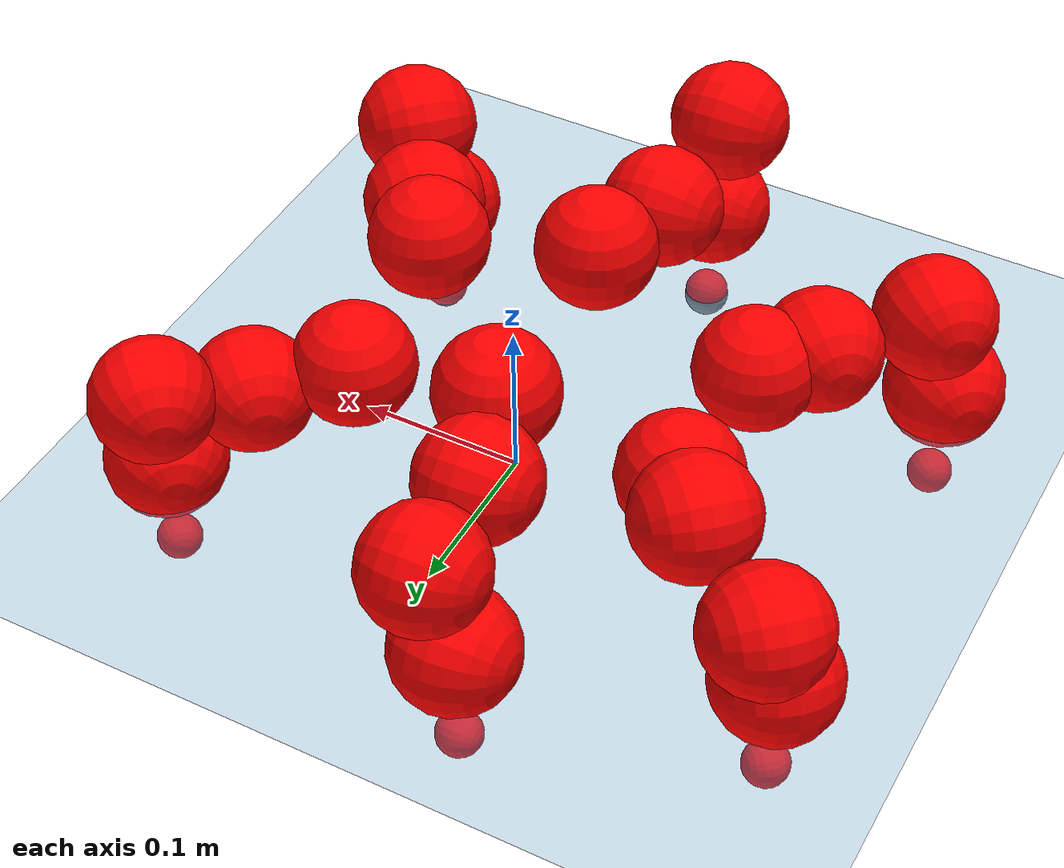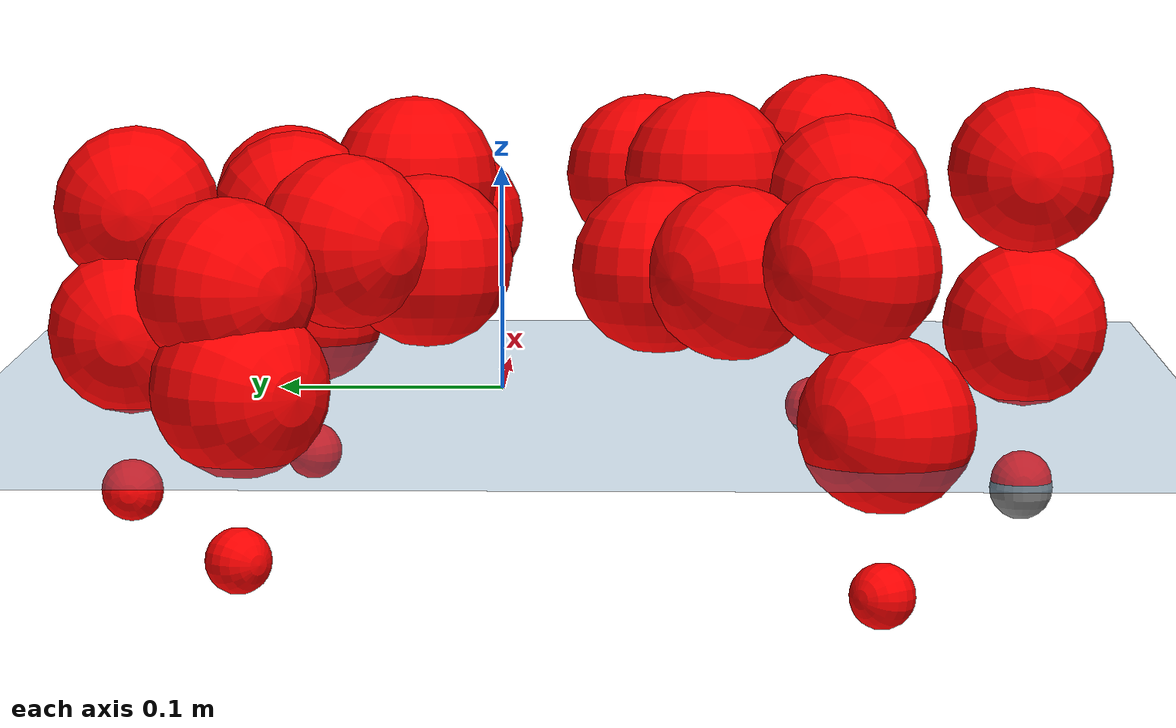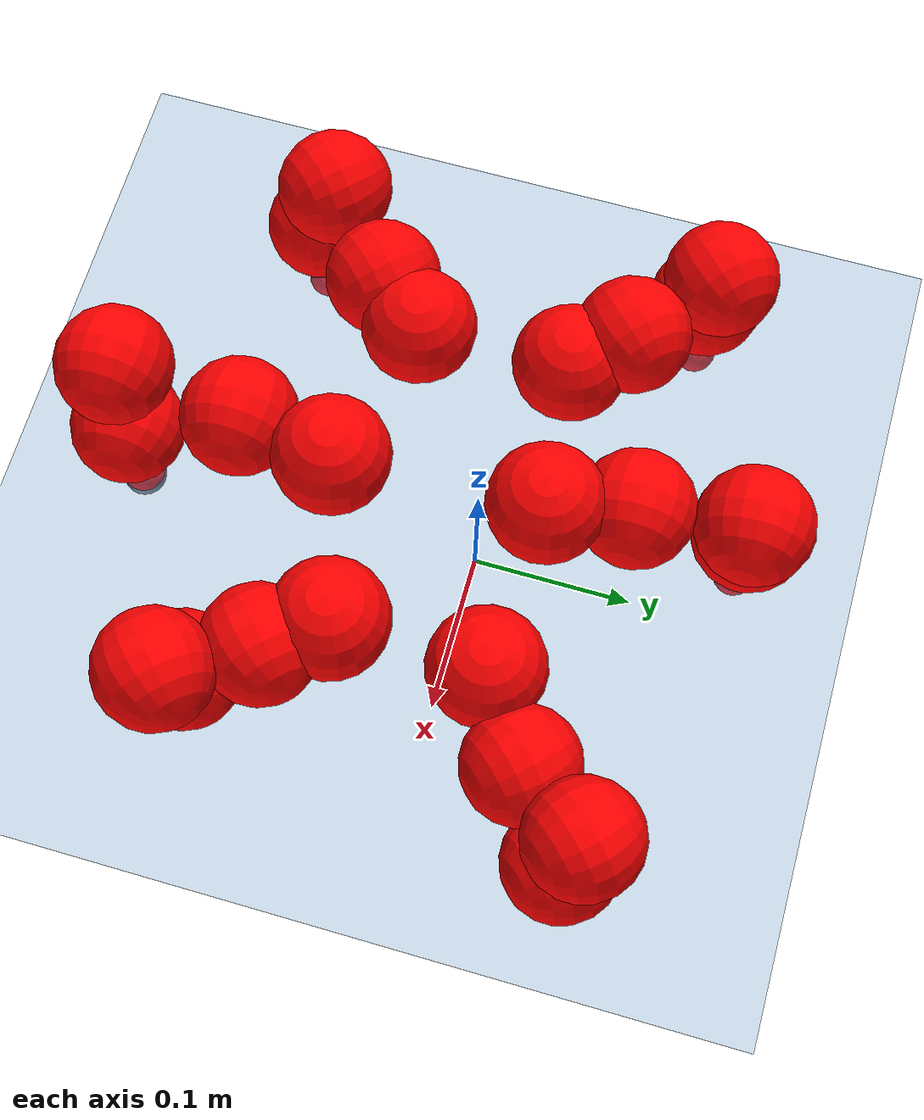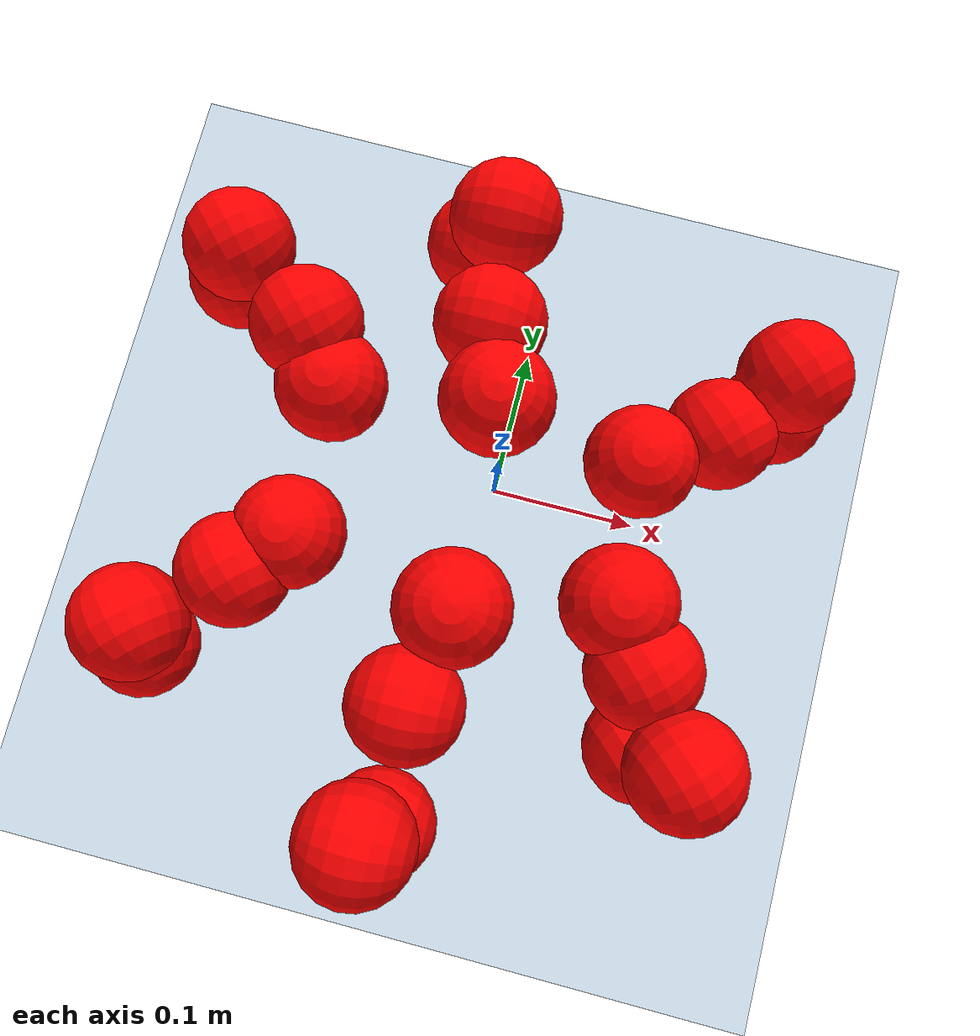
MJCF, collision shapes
<mujoco model="Golem">
  <compiler angle="radian" assetdir="assets" balanceinertia="true" inertiafromgeom="false"/>

  <option timestep="0.005" density="1.2" viscosity="2e-05"/>

  <size nkey="1"/>

  <visual>
    <quality shadowsize="8192"/>
    <map shadowclip="0.5"/>
  </visual>

  <default>
    <default class="/">
      <joint armature="0.01" damping="0.01" frictionloss="0.01"/>
      <geom contype="0" conaffinity="0" group="1" solref="-1000 -80"/>
      <site size="0.01 0.005 0.005" group="5"/>
      <general forcelimited="true" biastype="affine" gainprm="25" biasprm="0 -25 -0.5"/>
      <default class="visual">
        <geom type="mesh" group="2"/>
      </default>
      <default class="collision">
        <geom group="3"/>
      </default>
      <default class="foot">
        <geom size="0.01 0 0" condim="6" group="4" priority="1" solimp="0.015 1 0.01"/>
      </default>
      <default class="reward_collision_sphere">
        <geom group="5" rgba="1 0 0 1"/>
      </default>
    </default>
  </default>

  <asset>
    <texture type="skybox" colorspace="auto" name="//unnamed_texture_0" builtin="gradient" rgb1="0.95 0.95 0.95" rgb2="0.95 0.95 0.95" width="100" height="600"/>
    <texture type="2d" colorspace="auto" name="texplane" builtin="checker" rgb1="0.345 0.575 0.748" rgb2="0.345 0.575 0.748" markrgb="1 1 1" width="512" height="512"/>
    <material name="MatPlane" class="/" texture="texplane" texuniform="true" texrepeat="2 2" specular="0.9"/>
    <mesh name="body" class="/" file="body.stl" scale="0.001 0.001 0.001"/>
    <mesh name="coxa" class="/" file="coxa.stl" scale="0.001 0.001 0.001"/>
    <mesh name="femur" class="/" file="femur.stl" scale="0.001 0.001 0.001"/>
    <mesh name="tibia" class="/" file="tibia.stl" scale="0.001 0.001 0.001"/>
    <mesh name="tarsus" class="/" file="tarsus.stl" scale="0.001 0.001 0.001"/>
  </asset>

  <worldbody>
    <geom name="floor" class="/" size="100 100 0.125" type="plane" group="0" material="MatPlane"/>
    <light name="toplight_shadow" class="/" pos="0 0 5" dir="0.0990148 0.0990148 -0.990148" type="directional" ambient="0.04 0.04 0.04" diffuse="0.55 0.55 0.55" specular="0.12 0.12 0.12"/>
    <light name="toplight_fill" class="/" pos="0 0 5" dir="0.0990148 0.0990148 -0.990148" type="directional" castshadow="false" ambient="0.04 0.04 0.04" diffuse="0.3 0.3 0.3" specular="0.08 0.08 0.08"/>
    <body name="trunk" pos="-0.00974391 -0.0163849 -0.0122509" quat="0.999999 0.00083041 0.000825688 -0.00105938">
      <inertial pos="0.0106981 -0.00275981 0.0179793" quat="0.999712 -0.0212914 0.0106328 -0.00300597" mass="1.89872" diaginertia="0.00115695 0.000813536 0.0662868"/>
      <joint name="//unnamed_joint_0" type="free"/>
      <geom name="//unnamed_geom_1" class="/" pos="0 0 0.0936167" quat="1 0 0 0" type="mesh" rgba="0.9 0.9 0.9 1" mesh="body"/>
      <site name="imu" class="/" pos="0.113055 0.0644382 0.173099" size="0.00919642"/>
      <camera name="track" class="/" pos="0 -1.27517 0" quat="0.707107 0.707107 0 0" mode="trackcom"/>
      <camera name="ego_camera" class="/" pos="0.0856153 0 0.146276" quat="-0.5 -0.5 0.5 0.5"/>
      <body name="coxa_RR" pos="-0.121757 -0.06808 0.0806463" quat="0.376113 0.00311674 -0.00102565 -0.926568">
        <inertial pos="0.00320637 0.0177079 -0.0172405" quat="0.99838 0.0156676 -0.0260347 0.0480993" mass="0.131502" diaginertia="0.00132853 0.00122488 0.067127"/>
        <joint name="coxa_joint_RR" class="/" pos="0 0 0" axis="-0.0219233 0.000886775 -0.999759" range="-3.42338 3.12159" armature="0.00858147" damping="0.00360847" frictionloss="0.012002"/>
        <geom name="//unnamed_geom_2" class="/" type="mesh" rgba="0.2 0.2 0.2 1" mesh="coxa"/>
        <geom name="//unnamed_geom_3" class="reward_collision_sphere" size="0.0367857" pos="-0.0197574 0 0"/>
        <body name="femur_RR" pos="0.0215961 0.00391626 0.000708653" quat="0.493293 -0.502603 0.50095 0.503092">
          <inertial pos="0.0143077 0.00137509 0.00754557" quat="1 0.000163956 -2.84878e-05 -0.000212293" mass="0.147986" diaginertia="0.0011747 0.000984882 0.0629454"/>
          <joint name="femur_joint_RR" class="/" pos="0 0 0" axis="0.0184196 0.00430477 -0.999821" range="-2.87917 2.89933" armature="0.0160984" damping="0.00233755" frictionloss="0.00946193"/>
          <geom name="//unnamed_geom_4" class="/" type="mesh" rgba="0.9 0.9 0.9 1" mesh="femur"/>
          <geom name="//unnamed_geom_5" class="reward_collision_sphere" size="0.0367857"/>
          <body name="tibia_RR" pos="-0.00925789 -0.0687926 -0.00202214" quat="-7.3879e-05 1 -7.56984e-05 9.69591e-05">
            <inertial pos="-0.0112962 0.000947662 -0.00742889" quat="0.998279 -0.0175761 0.0046172 -0.0557534" mass="0.15717" diaginertia="0.00110287 0.000738895 0.044304"/>
            <joint name="tibia_joint_RR" class="/" pos="0 0 0" axis="-0.0686797 0.00576948 0.997622" stiffness="0.0522597" range="-2.92148 3.51805" armature="0.0126182" damping="0" frictionloss="0.0063118"/>
            <geom name="//unnamed_geom_6" class="/" type="mesh" rgba="0.2 0.2 0.2 1" mesh="tibia"/>
            <geom name="//unnamed_geom_7" class="reward_collision_sphere" size="0.0367857"/>
            <body name="tarsus_RR" pos="0.0631499 0.0163067 -0.00486832" quat="0.999996 -0.00200215 -0.00176386 -0.000277652">
              <inertial pos="0.024948 -0.0188725 0.0152736" quat="0.493555 0.538368 0.503501 0.461574" mass="0.132414" diaginertia="0.00112957 0.000676126 0.0522637"/>
              <joint name="tarsus_joint_RR" class="/" pos="0 0 0" axis="0.0577523 -0.00538003 0.998316" stiffness="0.0296501" range="-3.49017 3.09852" armature="0.00484208" damping="0.0620777" frictionloss="0.00396297"/>
              <geom name="//unnamed_geom_8" class="/" type="mesh" rgba="0.9 0.9 0.9 1" mesh="tarsus"/>
              <geom name="foot_1" class="foot" size="0.00572477" pos="0.0737609 0 0" quat="0 -0.707107 0 0.707107"/>
              <geom name="//unnamed_geom_10" class="reward_collision_sphere" size="0.0367857"/>
              <geom name="//unnamed_geom_11" class="reward_collision_sphere" size="0.0137946" pos="0.0707973 0 0"/>
              <site name="foot_1" class="foot" pos="0.0737609 0 0" quat="0 -0.707107 0 0.707107" size="0.00919642"/>
            </body>
          </body>
        </body>
      </body>
      <body name="coxa_RM" pos="0.00480607 -0.0952654 0.110213" quat="0.707047 -0.000319716 0.000212803 -0.707167">
        <inertial pos="0.00583618 -0.0107991 -0.00868726" quat="0.999839 0.00249074 0.0118721 -0.0132489" mass="0.162694" diaginertia="0.00112253 0.000993436 0.0596378"/>
        <joint name="coxa_joint_RM" class="/" pos="0 0 0" axis="-0.0232391 -0.0456546 -0.998687" stiffness="0.0844025" range="-2.99397 3.30535" armature="0.00968829" damping="0.0153559" frictionloss="0.0177021"/>
        <geom name="//unnamed_geom_12" class="/" type="mesh" rgba="0.2 0.2 0.2 1" mesh="coxa"/>
        <geom name="//unnamed_geom_13" class="reward_collision_sphere" size="0.0367857" pos="-0.0197574 0 0"/>
        <body name="femur_RM" pos="0.0425178 -0.0126501 -0.00871796" quat="0.498571 -0.499498 0.499127 0.502792">
          <inertial pos="-0.000376235 0.0117315 -0.014295" quat="0.999264 0.0133421 0.0188004 0.0306654" mass="0.175761" diaginertia="0.00159329 0.00125002 0.0731684"/>
          <joint name="femur_joint_RM" class="/" pos="0 0 0" axis="-0.0151498 0.0350303 -0.999271" range="-3.29607 3.36722" armature="0.0119452" damping="0.0745135" frictionloss="0.0109324"/>
          <geom name="//unnamed_geom_14" class="/" type="mesh" rgba="0.9 0.9 0.9 1" mesh="femur"/>
          <geom name="//unnamed_geom_15" class="reward_collision_sphere" size="0.0367857"/>
          <body name="tibia_RM" pos="-0.012634 -0.0806812 -0.00672805" quat="0.000424599 1 -2.78686e-05 6.00926e-05">
            <inertial pos="0.0177114 0.0167564 -0.0092136" quat="0.995987 0.0391346 0.0460339 0.0660289" mass="0.153031" diaginertia="0.00132022 0.00106338 0.0832152"/>
            <joint name="tibia_joint_RM" class="/" pos="0 0 0" axis="0.00382092 0.00164223 0.999991" stiffness="0.00399918" range="-3.22297 2.9206" armature="0.00343456" damping="0" frictionloss="0.0036427"/>
            <geom name="//unnamed_geom_16" class="/" type="mesh" rgba="0.2 0.2 0.2 1" mesh="tibia"/>
            <geom name="//unnamed_geom_17" class="reward_collision_sphere" size="0.0367857"/>
            <body name="tarsus_RM" pos="0.0697066 -0.000717655 -0.00791321" quat="0.999992 -0.00229923 0.00152539 -0.00278938">
              <inertial pos="0.0443601 -0.00459611 0.00689294" quat="0.50706 0.50331 0.477876 0.511082" mass="0.129734" diaginertia="0.000908766 0.000954834 0.0569318"/>
              <joint name="tarsus_joint_RM" class="/" pos="0 0 0" axis="0.00868359 -0.0376002 0.999255" stiffness="0.0523458" range="-3.14573 3.20998" armature="0.0175803" damping="0.0088151" frictionloss="0.00667618"/>
              <geom name="//unnamed_geom_18" class="/" type="mesh" rgba="0.9 0.9 0.9 1" mesh="tarsus"/>
              <geom name="foot_2" class="foot" size="0.0142323" pos="0.0737609 0 0" quat="0 -0.707107 0 0.707107"/>
              <geom name="//unnamed_geom_20" class="reward_collision_sphere" size="0.0367857"/>
              <geom name="//unnamed_geom_21" class="reward_collision_sphere" size="0.0137946" pos="0.0707973 0 0"/>
              <site name="foot_2" class="foot" pos="0.0737609 0 0" quat="0 -0.707107 0 0.707107" size="0.00919642"/>
            </body>
          </body>
        </body>
      </body>
      <body name="coxa_RF" pos="0.114858 -0.0609049 0.101964" quat="0.923798 0.00046315 -0.000214482 -0.382881">
        <inertial pos="-0.0155234 -0.000201372 0.00253964" quat="0.999572 -0.0125172 0.0140252 0.0224056" mass="0.157471" diaginertia="0.00095013 0.000939098 0.0787302"/>
        <joint name="coxa_joint_RF" class="/" pos="0 0 0" axis="-0.011846 -0.0312658 -0.999441" stiffness="0.0267958" range="-2.88981 3.25119" armature="0.0148096" damping="0" frictionloss="0.0115006"/>
        <geom name="//unnamed_geom_22" class="/" type="mesh" rgba="0.2 0.2 0.2 1" mesh="coxa"/>
        <geom name="//unnamed_geom_23" class="reward_collision_sphere" size="0.0367857" pos="-0.0197574 0 0"/>
        <body name="femur_RF" pos="0.0221613 -0.00743086 -0.00607016" quat="0.498859 -0.499549 0.501755 0.499832">
          <inertial pos="0.00405904 0.00671183 0.0146553" quat="0.999133 0.0132491 -0.00536621 0.0391018" mass="0.194891" diaginertia="0.00150069 0.000868616 0.0653961"/>
          <joint name="femur_joint_RF" class="/" pos="0 0 0" axis="0.00142727 -0.000105372 -0.999999" stiffness="0.0647007" range="-3.4535 3.17989" armature="0.00350785" damping="0.065491" frictionloss="0.00484352"/>
          <geom name="//unnamed_geom_24" class="/" type="mesh" rgba="0.9 0.9 0.9 1" mesh="femur"/>
          <geom name="//unnamed_geom_25" class="reward_collision_sphere" size="0.0367857"/>
          <body name="tibia_RF" pos="-0.0117392 -0.0603203 -0.0117901" quat="-5.01178e-05 1 0.000160451 -0.000173342">
            <inertial pos="-0.00935 -0.0128722 -0.00337573" quat="0.99912 -0.0196663 0.00385204 -0.0368452" mass="0.148706" diaginertia="0.000925921 0.00118132 0.053329"/>
            <joint name="tibia_joint_RF" class="/" pos="0 0 0" axis="0.030009 0.0129658 0.999466" range="-3.24468 3.28403" armature="0.00499486" damping="0.0419126" frictionloss="0.0159996"/>
            <geom name="//unnamed_geom_26" class="/" type="mesh" rgba="0.2 0.2 0.2 1" mesh="tibia"/>
            <geom name="//unnamed_geom_27" class="reward_collision_sphere" size="0.0367857"/>
            <body name="tarsus_RF" pos="0.050803 -0.0167409 0.00922343" quat="0.999963 0.00153655 -0.000848266 0.00837757">
              <inertial pos="0.0414819 0.0174212 0.00742023" quat="0.454262 0.455222 0.564669 0.51727" mass="0.194079" diaginertia="0.00103328 0.00136436 0.0695623"/>
              <joint name="tarsus_joint_RF" class="/" pos="0 0 0" axis="-0.0658164 0.0234814 0.997555" stiffness="0.0640325" range="-3.48395 3.24589" armature="0.00117651" damping="0.0111098" frictionloss="0.00949069"/>
              <geom name="//unnamed_geom_28" class="/" type="mesh" rgba="0.9 0.9 0.9 1" mesh="tarsus"/>
              <geom name="foot_3" class="foot" size="0.0120229" pos="0.0737609 0 0" quat="0 -0.707107 0 0.707107"/>
              <geom name="//unnamed_geom_30" class="reward_collision_sphere" size="0.0367857"/>
              <geom name="//unnamed_geom_31" class="reward_collision_sphere" size="0.0137946" pos="0.0707973 0 0"/>
              <site name="foot_3" class="foot" pos="0.0737609 0 0" quat="0 -0.707107 0 0.707107" size="0.00919642"/>
            </body>
          </body>
        </body>
      </body>
      <body name="coxa_LR" pos="-0.121541 0.057838 0.0833062" quat="0.384029 0.00480923 -0.00016415 0.923309">
        <inertial pos="0.00853771 0.0179087 -0.00829028" quat="0.997298 -0.0414817 0.0555351 0.0243116" mass="0.198394" diaginertia="0.00139451 0.00101267 0.0782903"/>
        <joint name="coxa_joint_LR" class="/" pos="0 0 0" axis="-0.0149599 0.0525156 -0.998508" stiffness="0.0672595" range="-2.92674 2.79213" armature="0.0168063" damping="0" frictionloss="0.0120573"/>
        <geom name="//unnamed_geom_32" class="/" type="mesh" rgba="0.2 0.2 0.2 1" mesh="coxa"/>
        <geom name="//unnamed_geom_33" class="reward_collision_sphere" size="0.0367857" pos="-0.0197574 0 0"/>
        <body name="femur_LR" pos="0.0206821 -0.00610328 0.0101626" quat="0.498136 -0.499653 0.505635 0.496529">
          <inertial pos="-0.00862154 -0.00209837 -0.00718321" quat="0.99628 -0.0293739 0.0341786 -0.0734531" mass="0.193393" diaginertia="0.00126399 0.00113605 0.0553439"/>
          <joint name="femur_joint_LR" class="/" pos="0 0 0" axis="-0.0378105 -0.0410741 0.99844" stiffness="0.0755968" range="-3.50771 3.43351" armature="0.00423987" damping="0.0480722" frictionloss="0.0117392"/>
          <geom name="//unnamed_geom_34" class="/" type="mesh" rgba="0.9 0.9 0.9 1" mesh="femur"/>
          <geom name="//unnamed_geom_35" class="reward_collision_sphere" size="0.0367857"/>
          <body name="tibia_LR" pos="0.0124978 -0.073893 0.0128776" quat="-0.00453881 0.999983 0.00335798 0.0012476">
            <inertial pos="0.00504414 0.0170686 -0.0128595" quat="0.998143 -0.00644613 -0.0467964 0.0384628" mass="0.15079" diaginertia="0.000993123 0.000875875 0.0630694"/>
            <joint name="tibia_joint_LR" class="/" pos="0 0 0" axis="0.0184096 -0.00237833 -0.999828" range="-2.84366 2.90127" armature="0.0141467" damping="0.0848222" frictionloss="0.00343834"/>
            <geom name="//unnamed_geom_36" class="/" type="mesh" rgba="0.2 0.2 0.2 1" mesh="tibia"/>
            <geom name="//unnamed_geom_37" class="reward_collision_sphere" size="0.0367857"/>
            <body name="tarsus_LR" pos="0.0407977 -0.000115411 -0.00870311" quat="0.999969 0.000954982 -0.00693279 0.0035595">
              <inertial pos="0.0394467 0.00610313 0.000727098" quat="0.542678 0.495143 0.452516 0.505533" mass="0.14433" diaginertia="0.000969077 0.000941891 0.0518988"/>
              <joint name="tarsus_joint_LR" class="/" pos="0 0 0" axis="0.0209838 0.0120422 -0.999707" stiffness="0.0766552" range="-2.82204 3.08529" armature="0.00930078" damping="0.0521749" frictionloss="0.0166942"/>
              <geom name="//unnamed_geom_38" class="/" type="mesh" rgba="0.9 0.9 0.9 1" mesh="tarsus"/>
              <geom name="foot_4" class="foot" size="0.0083263" pos="0.0737609 0 0" quat="0.707107 0 -0.707107 0"/>
              <geom name="//unnamed_geom_40" class="reward_collision_sphere" size="0.0367857"/>
              <geom name="//unnamed_geom_41" class="reward_collision_sphere" size="0.0137946" pos="0.0707973 0 0"/>
              <site name="foot_4" class="foot" pos="0.0737609 0 0" quat="0.707107 0 -0.707107 0" size="0.00919642"/>
            </body>
          </body>
        </body>
      </body>
      <body name="coxa_LM" pos="-0.0014369 0.0748878 0.108359" quat="0.705152 0.0051218 0.000494571 0.709037">
        <inertial pos="0.0155498 0.00847593 0.0142871" quat="0.999964 -0.00338766 -0.00512277 0.00582768" mass="0.135626" diaginertia="0.00138187 0.00120097 0.0496303"/>
        <joint name="coxa_joint_LM" class="/" pos="0 0 0" axis="-0.031419 0.000629286 -0.999506" range="-3.14476 3.1367" armature="0.00196265" damping="0.0917298" frictionloss="0.0150895"/>
        <geom name="//unnamed_geom_42" class="/" type="mesh" rgba="0.2 0.2 0.2 1" mesh="coxa"/>
        <geom name="//unnamed_geom_43" class="reward_collision_sphere" size="0.0367857" pos="-0.0197574 0 0"/>
        <body name="femur_LM" pos="0.031897 0.0168117 -0.0146364" quat="0.501635 -0.49968 0.498053 0.500626">
          <inertial pos="-0.0145294 -0.0111695 -0.0163718" quat="0.999895 0.0131314 0.000893608 0.00611616" mass="0.154305" diaginertia="0.00106669 0.0010662 0.0746699"/>
          <joint name="femur_joint_LM" class="/" pos="0 0 0" axis="0.0105645 0.0433713 0.999003" stiffness="0.0137811" range="-3.252 3.4274" armature="0.00382131" damping="0.0163583" frictionloss="0.00314348"/>
          <geom name="//unnamed_geom_44" class="/" type="mesh" rgba="0.9 0.9 0.9 1" mesh="femur"/>
          <geom name="//unnamed_geom_45" class="reward_collision_sphere" size="0.0367857"/>
          <body name="tibia_LM" pos="-0.00180677 -0.0701088 0.0073774" quat="-0.00131093 0.999998 0.00133038 -0.00104831">
            <inertial pos="0.0121728 0.0175128 -0.0184404" quat="0.995697 -0.0733581 0.0552347 0.0124191" mass="0.160227" diaginertia="0.00116456 0.0010657 0.078506"/>
            <joint name="tibia_joint_LM" class="/" pos="0 0 0" axis="-0.0368197 -0.060858 -0.997467" stiffness="0.0909861" range="-3.07154 3.46598" armature="0.00447255" damping="0" frictionloss="0.0100227"/>
            <geom name="//unnamed_geom_46" class="/" type="mesh" rgba="0.2 0.2 0.2 1" mesh="tibia"/>
            <geom name="//unnamed_geom_47" class="reward_collision_sphere" size="0.0367857"/>
            <body name="tarsus_LM" pos="0.0525846 0.00069979 -0.016182" quat="0.999989 -0.000321693 -0.00334419 -0.00319415">
              <inertial pos="0.0502989 0.00811325 0.0153275" quat="0.441478 0.500605 0.486389 0.563842" mass="0.142285" diaginertia="0.00149428 0.00140993 0.0882431"/>
              <joint name="tarsus_joint_LM" class="/" pos="0 0 0" axis="0.0327674 -0.0719216 -0.996872" stiffness="0.0338976" range="-3.06234 3.45989" armature="0.0143825" damping="0" frictionloss="0.00924257"/>
              <geom name="//unnamed_geom_48" class="/" type="mesh" rgba="0.9 0.9 0.9 1" mesh="tarsus"/>
              <geom name="foot_5" class="foot" size="0.00945628" pos="0.0737609 0 0" quat="0.707107 0 -0.707107 0"/>
              <geom name="//unnamed_geom_50" class="reward_collision_sphere" size="0.0367857"/>
              <geom name="//unnamed_geom_51" class="reward_collision_sphere" size="0.0137946" pos="0.0707973 0 0"/>
              <site name="foot_5" class="foot" pos="0.0737609 0 0" quat="0.707107 0 -0.707107 0" size="0.00919642"/>
            </body>
          </body>
        </body>
      </body>
      <body name="coxa_LF" pos="0.110537 0.0606002 0.0788532" quat="0.922899 -0.00765703 -0.0023575 0.384958">
        <inertial pos="-0.00818459 0.00759109 -0.00950309" quat="0.995718 -0.0375254 0.0586602 0.0607922" mass="0.112076" diaginertia="0.00129517 0.000765997 0.0756525"/>
        <joint name="coxa_joint_LF" class="/" pos="0 0 0" axis="0.00530621 0.0435662 -0.999036" stiffness="0.0234833" range="-3.14782 3.13992" armature="0.00795492" damping="0.0573934" frictionloss="0.0061495"/>
        <geom name="//unnamed_geom_52" class="/" type="mesh" rgba="0.2 0.2 0.2 1" mesh="coxa"/>
        <geom name="//unnamed_geom_53" class="reward_collision_sphere" size="0.0367857" pos="-0.0197574 0 0"/>
        <body name="femur_LF" pos="0.0383115 -0.00953093 -0.0123806" quat="0.500017 -0.49995 0.500023 0.50001">
          <inertial pos="-0.0159587 0.00880817 -0.0173115" quat="0.998947 -0.0416723 -0.0180301 0.00651159" mass="0.203116" diaginertia="0.00155281 0.00101819 0.0714957"/>
          <joint name="femur_joint_LF" class="/" pos="0 0 0" axis="-0.0545133 0.0299163 0.998065" range="-3.10295 2.76474" armature="0.00234033" damping="0.0606101" frictionloss="0.00736298"/>
          <geom name="//unnamed_geom_54" class="/" type="mesh" rgba="0.9 0.9 0.9 1" mesh="femur"/>
          <geom name="//unnamed_geom_55" class="reward_collision_sphere" size="0.0367857"/>
          <body name="tibia_LF" pos="-0.0141474 -0.0572919 0.00646629" quat="0.00603252 0.999979 -0.00101127 -0.00222721">
            <inertial pos="0.00698379 -0.00766151 0.000496928" quat="0.999891 -0.0127328 -0.00101429 -0.00742844" mass="0.153796" diaginertia="0.00129557 0.00100451 0.0658822"/>
            <joint name="tibia_joint_LF" class="/" pos="0 0 0" axis="0.0432027 -0.0603336 -0.997243" stiffness="0.00772185" range="-2.94588 2.87169" armature="0.0170748" damping="0.0263005" frictionloss="0.00523322"/>
            <geom name="//unnamed_geom_56" class="/" type="mesh" rgba="0.2 0.2 0.2 1" mesh="tibia"/>
            <geom name="//unnamed_geom_57" class="reward_collision_sphere" size="0.0367857"/>
            <body name="tarsus_LF" pos="0.053962 -0.00333437 0.00813831" quat="0.999988 0.00160862 -0.00458786 0.000375941">
              <inertial pos="0.0543901 -0.00926369 -0.000267032" quat="0.501498 0.501286 0.493415 0.50374" mass="0.200118" diaginertia="0.00153125 0.00131338 0.0734098"/>
              <joint name="tarsus_joint_LF" class="/" pos="0 0 0" axis="-0.00603909 -0.0538701 -0.99853" stiffness="0.00311975" range="-2.80483 2.79544" armature="0.00841523" damping="0.0614956" frictionloss="0.0111449"/>
              <geom name="//unnamed_geom_58" class="/" type="mesh" rgba="0.9 0.9 0.9 1" mesh="tarsus"/>
              <geom name="foot_6" class="foot" size="0.0103469" pos="0.0737609 0 0" quat="0.707107 0 -0.707107 0"/>
              <geom name="//unnamed_geom_60" class="reward_collision_sphere" size="0.0367857"/>
              <geom name="//unnamed_geom_61" class="reward_collision_sphere" size="0.0137946" pos="0.0707973 0 0"/>
              <site name="foot_6" class="foot" pos="0.0737609 0 0" quat="0.707107 0 -0.707107 0" size="0.00919642"/>
            </body>
          </body>
        </body>
      </body>
    </body>
  </worldbody>

  <contact>
    <pair class="/" geom1="floor" geom2="foot_1" name="//unnamed_contact_0"/>
    <pair class="/" geom1="floor" geom2="foot_2" name="//unnamed_contact_1"/>
    <pair class="/" geom1="floor" geom2="foot_3" name="//unnamed_contact_2"/>
    <pair class="/" geom1="floor" geom2="foot_4" name="//unnamed_contact_3"/>
    <pair class="/" geom1="floor" geom2="foot_5" name="//unnamed_contact_4"/>
    <pair class="/" geom1="floor" geom2="foot_6" name="//unnamed_contact_5"/>
  </contact>

  <actuator>
    <general name="coxa_joint_RR" class="/" joint="coxa_joint_RR" forcerange="-4.1653 4.1653" gainprm="21.6428" biasprm="0 -21.6428 -0.49069"/>
    <general name="femur_joint_RR" class="/" joint="femur_joint_RR" forcerange="-9.5356 9.5356" gainprm="21.6428" biasprm="0 -21.6428 -0.49069"/>
    <general name="tibia_joint_RR" class="/" joint="tibia_joint_RR" forcerange="-11.1554 11.1554" gainprm="21.6428" biasprm="0 -21.6428 -0.49069"/>
    <general name="tarsus_joint_RR" class="/" joint="tarsus_joint_RR" forcerange="-9.93124 9.93124" gainprm="21.6428" biasprm="0 -21.6428 -0.49069"/>
    <general name="coxa_joint_RM" class="/" joint="coxa_joint_RM" forcerange="-6.63011 6.63011" gainprm="21.6428" biasprm="0 -21.6428 -0.49069"/>
    <general name="femur_joint_RM" class="/" joint="femur_joint_RM" forcerange="-5.71242 5.71242" gainprm="21.6428" biasprm="0 -21.6428 -0.49069"/>
    <general name="tibia_joint_RM" class="/" joint="tibia_joint_RM" forcerange="-11.3814 11.3814" gainprm="21.6428" biasprm="0 -21.6428 -0.49069"/>
    <general name="tarsus_joint_RM" class="/" joint="tarsus_joint_RM" forcerange="-8.83887 8.83887" gainprm="21.6428" biasprm="0 -21.6428 -0.49069"/>
    <general name="coxa_joint_RF" class="/" joint="coxa_joint_RF" forcerange="-7.76162 7.76162" gainprm="21.6428" biasprm="0 -21.6428 -0.49069"/>
    <general name="femur_joint_RF" class="/" joint="femur_joint_RF" forcerange="-2.04217 2.04217" gainprm="21.6428" biasprm="0 -21.6428 -0.49069"/>
    <general name="tibia_joint_RF" class="/" joint="tibia_joint_RF" forcerange="-3.89569 3.89569" gainprm="21.6428" biasprm="0 -21.6428 -0.49069"/>
    <general name="tarsus_joint_RF" class="/" joint="tarsus_joint_RF" forcerange="-2.06596 2.06596" gainprm="21.6428" biasprm="0 -21.6428 -0.49069"/>
    <general name="coxa_joint_LR" class="/" joint="coxa_joint_LR" forcerange="-10.5606 10.5606" gainprm="21.6428" biasprm="0 -21.6428 -0.49069"/>
    <general name="femur_joint_LR" class="/" joint="femur_joint_LR" forcerange="-4.31133 4.31133" gainprm="21.6428" biasprm="0 -21.6428 -0.49069"/>
    <general name="tibia_joint_LR" class="/" joint="tibia_joint_LR" forcerange="-3.6523 3.6523" gainprm="21.6428" biasprm="0 -21.6428 -0.49069"/>
    <general name="tarsus_joint_LR" class="/" joint="tarsus_joint_LR" forcerange="-7.2931 7.2931" gainprm="21.6428" biasprm="0 -21.6428 -0.49069"/>
    <general name="coxa_joint_LM" class="/" joint="coxa_joint_LM" forcerange="-3.97535 3.97535" gainprm="21.6428" biasprm="0 -21.6428 -0.49069"/>
    <general name="femur_joint_LM" class="/" joint="femur_joint_LM" forcerange="-6.93022 6.93022" gainprm="21.6428" biasprm="0 -21.6428 -0.49069"/>
    <general name="tibia_joint_LM" class="/" joint="tibia_joint_LM" forcerange="-10.9911 10.9911" gainprm="21.6428" biasprm="0 -21.6428 -0.49069"/>
    <general name="tarsus_joint_LM" class="/" joint="tarsus_joint_LM" forcerange="-10.1262 10.1262" gainprm="21.6428" biasprm="0 -21.6428 -0.49069"/>
    <general name="coxa_joint_LF" class="/" joint="coxa_joint_LF" forcerange="-4.39855 4.39855" gainprm="21.6428" biasprm="0 -21.6428 -0.49069"/>
    <general name="femur_joint_LF" class="/" joint="femur_joint_LF" forcerange="-10.6526 10.6526" gainprm="21.6428" biasprm="0 -21.6428 -0.49069"/>
    <general name="tibia_joint_LF" class="/" joint="tibia_joint_LF" forcerange="-5.95199 5.95199" gainprm="21.6428" biasprm="0 -21.6428 -0.49069"/>
    <general name="tarsus_joint_LF" class="/" joint="tarsus_joint_LF" forcerange="-6.69362 6.69362" gainprm="21.6428" biasprm="0 -21.6428 -0.49069"/>
  </actuator>

  <sensor>
    <gyro site="imu" name="imu_angular_velocity"/>
    <velocimeter site="imu" name="imu_linear_velocity"/>
    <framelinvel objtype="site" objname="foot_1" name="foot_1_global_linear_velocity"/>
    <framelinvel objtype="site" objname="foot_2" name="foot_2_global_linear_velocity"/>
    <framelinvel objtype="site" objname="foot_3" name="foot_3_global_linear_velocity"/>
    <framelinvel objtype="site" objname="foot_4" name="foot_4_global_linear_velocity"/>
    <framelinvel objtype="site" objname="foot_5" name="foot_5_global_linear_velocity"/>
    <framelinvel objtype="site" objname="foot_6" name="foot_6_global_linear_velocity"/>
  </sensor>

  <keyframe>
    <key name="home" qpos="0 0 0.1457 1 0 0 0 0 0 0 0 0 0 0 0 0 0 0 0 0 0 0 0 0 0 0 0 0 0 0 0"/>
  </keyframe>
</mujoco>
